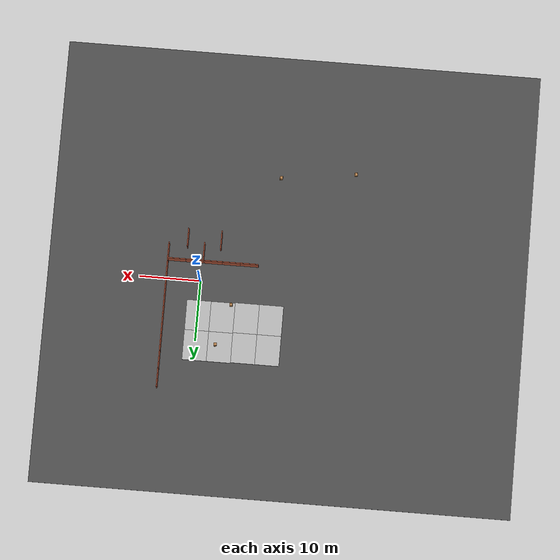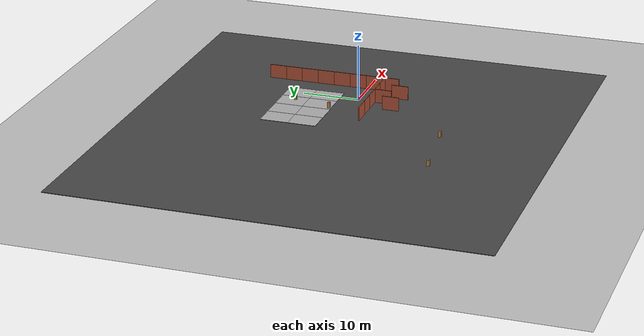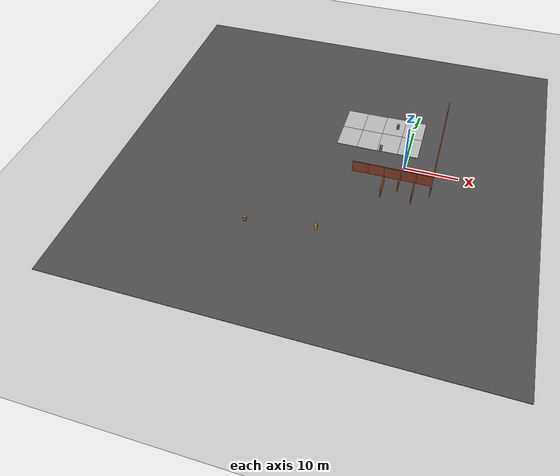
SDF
<sdf version="1.6">
 <world name="default">
  <scene>
   <sky><clouds><speed>5</speed></clouds></sky>
   <ambient>0.4 0.4 0.4 1</ambient>
   <background>0.7 0.7 0.7 1</background>
   <shadows>1</shadows>
  </scene>
  <light name="sun" type="directional">
   <pose>0 0 10 0 -0 0</pose>
   <diffuse>0.8 0.8 0.8 1</diffuse>
   <specular>0.2 0.2 0.2 1</specular>
   <attenuation>
    <range>1000</range>
    <constant>0.9</constant>
    <linear>0.01</linear>
    <quadratic>0.001</quadratic>
   </attenuation>
   <direction>-0.5 0.1 -0.9</direction>
  </light>
  <model name="ground_plane">
   <static>1</static>
   <link name="link">
    <collision name="collision">
     <geometry><plane><normal>0 0 1</normal><size>100 100</size></plane></geometry>
     <surface><friction><ode><mu>100</mu><mu2>50</mu2></ode></friction></surface>
    </collision>
    <visual name="visual">
     <cast_shadows>0</cast_shadows>
     <geometry><plane><normal>0 0 1</normal><size>100 100</size></plane></geometry>
     <material>
      <script><uri>file://media/materials/scripts/gazebo.material</uri><name>Gazebo/Grey</name></script>
     </material>
    </visual>
   </link>
  </model>
  <gravity>0 0 -9.8</gravity>
  <magnetic_field>6e-06 2.3e-05 -4.2e-05</magnetic_field>
  <atmosphere type="adiabatic"/>
  <physics name="default_physics" default="0" type="ode">
   <max_step_size>0.01</max_step_size>
   <real_time_factor>1</real_time_factor>
   <real_time_update_rate>100</real_time_update_rate>
  </physics>
  <scene><ambient>0.4 0.4 0.4 1</ambient><background>0.7 0.7 0.7 1</background><shadows>1</shadows></scene>
  <spherical_coordinates>
   <surface_model>EARTH_WGS84</surface_model>
   <latitude_deg>0</latitude_deg>
   <longitude_deg>0</longitude_deg>
   <elevation>0</elevation>
   <heading_deg>0</heading_deg>
  </spherical_coordinates>
  <model name="wall_brick_3m">
   <pose>2.53536 -6.79833 0 0 -0 1.57</pose>
   <link name="Wall_2">
    <collision name="Wall_2_Collision">
     <geometry><box><size>3 0.15 2.5</size></box></geometry>
     <pose>0 0 1.25 0 -0 0</pose>
    </collision>
    <visual name="Wall_2_Visual">
     <pose>0 0 1.25 0 -0 0</pose>
     <geometry><box><size>3 0.15 2.5</size></box></geometry>
     <material>
      <script><uri>file://media/materials/scripts/gazebo.material</uri><name>Gazebo/Bricks</name></script>
      <ambient>1 1 1 1</ambient>
     </material>
     <meta><layer>0</layer></meta>
    </visual>
   </link>
   <static>1</static>
  </model>
  <model name="wall_brick_3m_clone">
   <pose>-0.265232 -4.62667 0 0 -0 1.57</pose>
   <link name="Wall_2">
    <collision name="Wall_2_Collision">
     <geometry><box><size>3 0.15 2.5</size></box></geometry>
     <pose>0 0 1.25 0 -0 0</pose>
    </collision>
    <visual name="Wall_2_Visual">
     <pose>0 0 1.25 0 -0 0</pose>
     <geometry><box><size>3 0.15 2.5</size></box></geometry>
     <material>
      <script><uri>file://media/materials/scripts/gazebo.material</uri><name>Gazebo/Bricks</name></script>
      <ambient>1 1 1 1</ambient>
     </material>
     <meta><layer>0</layer></meta>
    </visual>
   </link>
   <static>1</static>
  </model>
  <model name="wall_brick_3m_clone_clone">
   <pose>-2.96784 -6.78032 0 0 -0 1.57</pose>
   <link name="Wall_2">
    <collision name="Wall_2_Collision">
     <geometry><box><size>3 0.15 2.5</size></box></geometry>
     <pose>0 0 1.25 0 -0 0</pose>
    </collision>
    <visual name="Wall_2_Visual">
     <pose>0 0 1.25 0 -0 0</pose>
     <geometry><box><size>3 0.15 2.5</size></box></geometry>
     <material>
      <script><uri>file://media/materials/scripts/gazebo.material</uri><name>Gazebo/Bricks</name></script>
      <ambient>1 1 1 1</ambient>
     </material>
     <meta><layer>0</layer></meta>
    </visual>
   </link>
   <static>1</static>
  </model>
  <model name="wall_brick_3m_clone_0">
   <pose>5.57817 -4.2114 0 0 -0 1.57</pose>
   <link name="Wall_2">
    <collision name="Wall_2_Collision">
     <geometry><box><size>3 0.15 2.5</size></box></geometry>
     <pose>0 0 1.25 0 -0 0</pose>
    </collision>
    <visual name="Wall_2_Visual">
     <pose>0 0 1.25 0 -0 0</pose>
     <geometry><box><size>3 0.15 2.5</size></box></geometry>
     <material>
      <script><uri>file://media/materials/scripts/gazebo.material</uri><name>Gazebo/Bricks</name></script>
      <ambient>1 1 1 1</ambient>
     </material>
     <meta><layer>0</layer></meta>
    </visual>
   </link>
   <static>1</static>
  </model>
  <model name="wall_brick_3m_clone_1">
   <pose>4.12513 -3.1 0 0 -0 0</pose>
   <link name="Wall_2">
    <collision name="Wall_2_Collision">
     <geometry><box><size>3 0.15 2.5</size></box></geometry>
     <pose>0 0 1.25 0 -0 0</pose>
    </collision>
    <visual name="Wall_2_Visual">
     <pose>0 0 1.25 0 -0 0</pose>
     <geometry><box><size>3 0.15 2.5</size></box></geometry>
     <material>
      <script><uri>file://media/materials/scripts/gazebo.material</uri><name>Gazebo/Bricks</name></script>
      <ambient>1 1 1 1</ambient>
     </material>
     <meta><layer>0</layer></meta>
    </visual>
   </link>
   <static>1</static>
  </model>
  <model name="wall_brick_3m_clone_1_clone">
   <pose>1.12513 -3.1 0 0 -0 0</pose>
   <link name="Wall_2">
    <collision name="Wall_2_Collision">
     <geometry><box><size>3 0.15 2.5</size></box></geometry>
     <pose>0 0 1.25 0 -0 0</pose>
    </collision>
    <visual name="Wall_2_Visual">
     <pose>0 0 1.25 0 -0 0</pose>
     <geometry><box><size>3 0.15 2.5</size></box></geometry>
     <material>
      <script><uri>file://media/materials/scripts/gazebo.material</uri><name>Gazebo/Bricks</name></script>
      <ambient>1 1 1 1</ambient>
     </material>
     <meta><layer>0</layer></meta>
    </visual>
   </link>
   <static>1</static>
  </model>
  <model name="wall_brick_3m_clone_1_clone_0">
   <pose>-1.87487 -3.1 0 0 -0 0</pose>
   <link name="Wall_2">
    <collision name="Wall_2_Collision">
     <geometry><box><size>3 0.15 2.5</size></box></geometry>
     <pose>0 0 1.25 0 -0 0</pose>
    </collision>
    <visual name="Wall_2_Visual">
     <pose>0 0 1.25 0 -0 0</pose>
     <geometry><box><size>3 0.15 2.5</size></box></geometry>
     <material>
      <script><uri>file://media/materials/scripts/gazebo.material</uri><name>Gazebo/Bricks</name></script>
      <ambient>1 1 1 1</ambient>
     </material>
     <meta><layer>0</layer></meta>
    </visual>
   </link>
   <static>1</static>
  </model>
  <model name="wall_brick_3m_clone_1_clone_1">
   <pose>-4.87487 -3.1 0 0 -0 0</pose>
   <link name="Wall_2">
    <collision name="Wall_2_Collision">
     <geometry><box><size>3 0.15 2.5</size></box></geometry>
     <pose>0 0 1.25 0 -0 0</pose>
    </collision>
    <visual name="Wall_2_Visual">
     <pose>0 0 1.25 0 -0 0</pose>
     <geometry><box><size>3 0.15 2.5</size></box></geometry>
     <material>
      <script><uri>file://media/materials/scripts/gazebo.material</uri><name>Gazebo/Bricks</name></script>
      <ambient>1 1 1 1</ambient>
     </material>
     <meta><layer>0</layer></meta>
    </visual>
   </link>
   <static>1</static>
  </model>
  <model name="wall_brick_3m_clone_1_clone_1_clone">
   <pose>-7.87487 -3.11682 0 0 -0 0</pose>
   <link name="Wall_2">
    <collision name="Wall_2_Collision">
     <geometry><box><size>3 0.15 2.5</size></box></geometry>
     <pose>0 0 1.25 0 -0 0</pose>
    </collision>
    <visual name="Wall_2_Visual">
     <pose>0 0 1.25 0 -0 0</pose>
     <geometry><box><size>3 0.15 2.5</size></box></geometry>
     <material>
      <script><uri>file://media/materials/scripts/gazebo.material</uri><name>Gazebo/Bricks</name></script>
      <ambient>1 1 1 1</ambient>
     </material>
     <meta><layer>0</layer></meta>
    </visual>
   </link>
   <static>1</static>
  </model>
  <model name="wall_brick_3m_clone_0_clone">
   <pose>5.57817 -1.21128 0 0 -0 1.57</pose>
   <link name="Wall_2">
    <collision name="Wall_2_Collision">
     <geometry><box><size>3 0.15 2.5</size></box></geometry>
     <pose>0 0 1.25 0 -0 0</pose>
    </collision>
    <visual name="Wall_2_Visual">
     <pose>0 0 1.25 0 -0 0</pose>
     <geometry><box><size>3 0.15 2.5</size></box></geometry>
     <material>
      <script><uri>file://media/materials/scripts/gazebo.material</uri><name>Gazebo/Bricks</name></script>
      <ambient>1 1 1 1</ambient>
     </material>
     <meta><layer>0</layer></meta>
    </visual>
   </link>
   <static>1</static>
  </model>
  <model name="wall_brick_3m_clone_0_clone_clone">
   <pose>5.57817 1.78884 0 0 -0 1.57</pose>
   <link name="Wall_2">
    <collision name="Wall_2_Collision">
     <geometry><box><size>3 0.15 2.5</size></box></geometry>
     <pose>0 0 1.25 0 -0 0</pose>
    </collision>
    <visual name="Wall_2_Visual">
     <pose>0 0 1.25 0 -0 0</pose>
     <geometry><box><size>3 0.15 2.5</size></box></geometry>
     <material>
      <script><uri>file://media/materials/scripts/gazebo.material</uri><name>Gazebo/Bricks</name></script>
      <ambient>1 1 1 1</ambient>
     </material>
     <meta><layer>0</layer></meta>
    </visual>
   </link>
   <static>1</static>
  </model>
  <model name="wall_brick_3m_clone_0_clone_clone_0">
   <pose>5.57817 4.78896 0 0 -0 1.57</pose>
   <link name="Wall_2">
    <collision name="Wall_2_Collision">
     <geometry><box><size>3 0.15 2.5</size></box></geometry>
     <pose>0 0 1.25 0 -0 0</pose>
    </collision>
    <visual name="Wall_2_Visual">
     <pose>0 0 1.25 0 -0 0</pose>
     <geometry><box><size>3 0.15 2.5</size></box></geometry>
     <material>
      <script><uri>file://media/materials/scripts/gazebo.material</uri><name>Gazebo/Bricks</name></script>
      <ambient>1 1 1 1</ambient>
     </material>
     <meta><layer>0</layer></meta>
    </visual>
   </link>
   <static>1</static>
  </model>
  <model name="wall_brick_3m_clone_0_clone_clone_0_clone">
   <pose>5.57817 7.78908 0 0 -0 1.57</pose>
   <link name="Wall_2">
    <collision name="Wall_2_Collision">
     <geometry><box><size>3 0.15 2.5</size></box></geometry>
     <pose>0 0 1.25 0 -0 0</pose>
    </collision>
    <visual name="Wall_2_Visual">
     <pose>0 0 1.25 0 -0 0</pose>
     <geometry><box><size>3 0.15 2.5</size></box></geometry>
     <material>
      <script><uri>file://media/materials/scripts/gazebo.material</uri><name>Gazebo/Bricks</name></script>
      <ambient>1 1 1 1</ambient>
     </material>
     <meta><layer>0</layer></meta>
    </visual>
   </link>
   <static>1</static>
  </model>
  <model name="wall_brick_3m_clone_0_clone_clone_0_clone_clone">
   <pose>5.57817 10.7892 0 0 -0 1.57</pose>
   <link name="Wall_2">
    <collision name="Wall_2_Collision">
     <geometry><box><size>3 0.15 2.5</size></box></geometry>
     <pose>0 0 1.25 0 -0 0</pose>
    </collision>
    <visual name="Wall_2_Visual">
     <pose>0 0 1.25 0 -0 0</pose>
     <geometry><box><size>3 0.15 2.5</size></box></geometry>
     <material>
      <script><uri>file://media/materials/scripts/gazebo.material</uri><name>Gazebo/Bricks</name></script>
      <ambient>1 1 1 1</ambient>
     </material>
     <meta><layer>0</layer></meta>
    </visual>
   </link>
   <static>1</static>
  </model>
  <model name="wall_brick_3m_clone_0_clone_clone_0_clone_clone_0">
   <pose>5.57817 13.7893 0 0 -0 1.57</pose>
   <link name="Wall_2">
    <collision name="Wall_2_Collision">
     <geometry><box><size>3 0.15 2.5</size></box></geometry>
     <pose>0 0 1.25 0 -0 0</pose>
    </collision>
    <visual name="Wall_2_Visual">
     <pose>0 0 1.25 0 -0 0</pose>
     <geometry><box><size>3 0.15 2.5</size></box></geometry>
     <material>
      <script><uri>file://media/materials/scripts/gazebo.material</uri><name>Gazebo/Bricks</name></script>
      <ambient>1 1 1 1</ambient>
     </material>
     <meta><layer>0</layer></meta>
    </visual>
   </link>
   <static>1</static>
  </model>
  <model name="wall_brick_3m_clone_0_clone_clone_0_clone_clone_0_clone">
   <pose>5.57817 16.7894 0 0 -0 1.57</pose>
   <link name="Wall_2">
    <collision name="Wall_2_Collision">
     <geometry><box><size>3 0.15 2.5</size></box></geometry>
     <pose>0 0 1.25 0 -0 0</pose>
    </collision>
    <visual name="Wall_2_Visual">
     <pose>0 0 1.25 0 -0 0</pose>
     <geometry><box><size>3 0.15 2.5</size></box></geometry>
     <material>
      <script><uri>file://media/materials/scripts/gazebo.material</uri><name>Gazebo/Bricks</name></script>
      <ambient>1 1 1 1</ambient>
     </material>
     <meta><layer>0</layer></meta>
    </visual>
   </link>
   <static>1</static>
  </model>
  <model name="mud_box">
   <static>1</static>
   <link name="link">
    <collision name="collision"><geometry><box><size>8 10 0.2</size></box></geometry></collision>
    <visual name="visual_1">
     <pose>-2 2.5 0 0 -0 0</pose>
     <cast_shadows>0</cast_shadows>
     <geometry><box><size>4 5 0.2</size></box></geometry>
     <material>
      <script>
       <uri>model://mud_box/materials/scripts</uri>
       <uri>model://mud_box/materials/textures</uri>
       <name>vrc/mud</name>
      </script>
     </material>
    </visual>
    <visual name="visual_2">
     <pose>2 2.5 0 0 -0 0</pose>
     <cast_shadows>0</cast_shadows>
     <geometry><box><size>4 5 0.2</size></box></geometry>
     <material>
      <script>
       <uri>model://mud_box/materials/scripts</uri>
       <uri>model://mud_box/materials/textures</uri>
       <name>vrc/mud</name>
      </script>
     </material>
    </visual>
    <visual name="visual_3">
     <pose>2 -2.5 0 0 -0 0</pose>
     <cast_shadows>0</cast_shadows>
     <geometry><box><size>4 5 0.2</size></box></geometry>
     <material>
      <script>
       <uri>model://mud_box/materials/scripts</uri>
       <uri>model://mud_box/materials/textures</uri>
       <name>vrc/mud</name>
      </script>
     </material>
    </visual>
    <visual name="visual_4">
     <pose>-2 -2.5 0 0 -0 0</pose>
     <cast_shadows>0</cast_shadows>
     <geometry><box><size>4 5 0.2</size></box></geometry>
     <material>
      <script>
       <uri>model://mud_box/materials/scripts</uri>
       <uri>model://mud_box/materials/textures</uri>
       <name>vrc/mud</name>
      </script>
     </material>
    </visual>
   </link>
   <pose>-2.08423 8.22908 0 0 -0 0</pose>
  </model>
  <model name="mud_box_clone">
   <static>1</static>
   <link name="link">
    <collision name="collision"><geometry><box><size>8 10 0.2</size></box></geometry></collision>
    <visual name="visual_1">
     <pose>-2 2.5 0 0 -0 0</pose>
     <cast_shadows>0</cast_shadows>
     <geometry><box><size>4 5 0.2</size></box></geometry>
     <material>
      <script>
       <uri>model://mud_box/materials/scripts</uri>
       <uri>model://mud_box/materials/textures</uri>
       <name>vrc/mud</name>
      </script>
     </material>
    </visual>
    <visual name="visual_2">
     <pose>2 2.5 0 0 -0 0</pose>
     <cast_shadows>0</cast_shadows>
     <geometry><box><size>4 5 0.2</size></box></geometry>
     <material>
      <script>
       <uri>model://mud_box/materials/scripts</uri>
       <uri>model://mud_box/materials/textures</uri>
       <name>vrc/mud</name>
      </script>
     </material>
    </visual>
    <visual name="visual_3">
     <pose>2 -2.5 0 0 -0 0</pose>
     <cast_shadows>0</cast_shadows>
     <geometry><box><size>4 5 0.2</size></box></geometry>
     <material>
      <script>
       <uri>model://mud_box/materials/scripts</uri>
       <uri>model://mud_box/materials/textures</uri>
       <name>vrc/mud</name>
      </script>
     </material>
    </visual>
    <visual name="visual_4">
     <pose>-2 -2.5 0 0 -0 0</pose>
     <cast_shadows>0</cast_shadows>
     <geometry><box><size>4 5 0.2</size></box></geometry>
     <material>
      <script>
       <uri>model://mud_box/materials/scripts</uri>
       <uri>model://mud_box/materials/textures</uri>
       <name>vrc/mud</name>
      </script>
     </material>
    </visual>
   </link>
   <pose>-10.0537 8.12309 0 0 -0 0</pose>
  </model>
  <model name="marble_1_5cm">
   <link name="link">
    <pose>0 0 0.0075 0 -0 0</pose>
    <inertial>
     <mass>0.0062</mass>
     <inertia>
      <ixx>1.395e-07</ixx>
      <ixy>0</ixy>
      <ixz>0</ixz>
      <iyy>1.395e-07</iyy>
      <iyz>0</iyz>
      <izz>1.395e-07</izz>
     </inertia>
    </inertial>
    <collision name="collision">
     <geometry><sphere><radius>0.0075</radius></sphere></geometry>
     <surface>
      <contact>
       <poissons_ratio>0.22</poissons_ratio>
       <elastic_modulus>5.1e+10</elastic_modulus>
       <ode><kp>100000</kp><kd>100</kd><max_vel>100</max_vel><min_depth>0.001</min_depth></ode>
      </contact>
      <friction>
       <torsional>
        <coefficient>1</coefficient>
        <use_patch_radius>0</use_patch_radius>
        <surface_radius>0.01</surface_radius>
       </torsional>
      </friction>
     </surface>
    </collision>
    <visual name="visual">
     <geometry><sphere><radius>0.0075</radius></sphere></geometry>
     <material>
      <script><uri>file://media/materials/scripts/gazebo.material</uri><name>Gazebo/Blue</name></script>
     </material>
    </visual>
    <velocity_decay><linear>0</linear><angular>0.005</angular></velocity_decay>
   </link>
   <pose>5.91825 10.5896 0.048999 0 -0 0</pose>
  </model>
  <model name="cabinet">
   <static>1</static>
   <link name="cabinet_bottom_plate">
    <inertial>
     <pose>0 0 -1 0 -0 0</pose>
     <inertia><ixx>2.05</ixx><ixy>0</ixy><ixz>0</ixz><iyy>2.05</iyy><iyz>0</iyz><izz>2.05</izz></inertia>
     <mass>25</mass>
    </inertial>
    <collision name="cabinet_bottom_plate_geom">
     <pose>0 0 0.01 0 -0 0</pose>
     <geometry><box><size>0.45 0.45 0.02</size></box></geometry>
    </collision>
    <visual name="cabinet_bottom_plate_geom_visual">
     <pose>0 0 0.01 0 -0 0</pose>
     <geometry><box><size>0.45 0.45 0.02</size></box></geometry>
     <material>
      <script><uri>file://media/materials/scripts/gazebo.material</uri><name>Gazebo/Wood</name></script>
     </material>
    </visual>
    <collision name="cabinet_bottom_plate_geom_cabinet_back_plate">
     <pose>0.235 0 0.51 0 -0 0</pose>
     <geometry><box><size>0.02 0.45 1.02</size></box></geometry>
    </collision>
    <visual name="cabinet_bottom_plate_geom_cabinet_back_plate_visual">
     <pose>0.235 0 0.51 0 -0 0</pose>
     <geometry><box><size>0.02 0.45 1.02</size></box></geometry>
     <material>
      <script><uri>file://media/materials/scripts/gazebo.material</uri><name>Gazebo/Wood</name></script>
     </material>
    </visual>
    <collision name="cabinet_bottom_plate_geom_cabinet_left_plate">
     <pose>0 0.235 0.51 0 -0 0</pose>
     <geometry><box><size>0.45 0.02 1.02</size></box></geometry>
    </collision>
    <visual name="cabinet_bottom_plate_geom_cabinet_left_plate_visual">
     <pose>0 0.235 0.51 0 -0 0</pose>
     <geometry><box><size>0.45 0.02 1.02</size></box></geometry>
     <material>
      <script><uri>file://media/materials/scripts/gazebo.material</uri><name>Gazebo/Wood</name></script>
     </material>
    </visual>
    <collision name="cabinet_bottom_plate_geom_cabinet_middle_plate">
     <pose>0 0 0.51 0 -0 0</pose>
     <geometry><box><size>0.45 0.45 0.02</size></box></geometry>
    </collision>
    <visual name="cabinet_bottom_plate_geom_cabinet_middle_plate_visual">
     <pose>0 0 0.51 0 -0 0</pose>
     <geometry><box><size>0.45 0.45 0.02</size></box></geometry>
     <material>
      <script><uri>file://media/materials/scripts/gazebo.material</uri><name>Gazebo/Wood</name></script>
     </material>
    </visual>
    <collision name="cabinet_bottom_plate_geom_cabinet_right_plate">
     <pose>0 -0.235 0.51 0 -0 0</pose>
     <geometry><box><size>0.45 0.02 1.02</size></box></geometry>
    </collision>
    <visual name="cabinet_bottom_plate_geom_cabinet_right_plate_visual">
     <pose>0 -0.235 0.51 0 -0 0</pose>
     <geometry><box><size>0.45 0.02 1.02</size></box></geometry>
     <material>
      <script><uri>file://media/materials/scripts/gazebo.material</uri><name>Gazebo/Wood</name></script>
     </material>
    </visual>
    <collision name="cabinet_bottom_plate_geom_cabinet_top_plate">
     <pose>0 0 1.01 0 -0 0</pose>
     <geometry><box><size>0.45 0.45 0.02</size></box></geometry>
    </collision>
    <visual name="cabinet_bottom_plate_geom_cabinet_top_plate_visual">
     <pose>0 0 1.01 0 -0 0</pose>
     <geometry><box><size>0.45 0.45 0.02</size></box></geometry>
     <material>
      <script><uri>file://media/materials/scripts/gazebo.material</uri><name>Gazebo/Wood</name></script>
     </material>
    </visual>
   </link>
   <pose>-5.4039 3.61914 0.109518 0 -0 3.13851</pose>
  </model>
  <model name="cabinet_clone">
   <static>1</static>
   <link name="cabinet_bottom_plate">
    <inertial>
     <pose>0 0 -1 0 -0 0</pose>
     <inertia><ixx>2.05</ixx><ixy>0</ixy><ixz>0</ixz><iyy>2.05</iyy><iyz>0</iyz><izz>2.05</izz></inertia>
     <mass>25</mass>
    </inertial>
    <collision name="cabinet_bottom_plate_geom">
     <pose>0 0 0.01 0 -0 0</pose>
     <geometry><box><size>0.45 0.45 0.02</size></box></geometry>
    </collision>
    <visual name="cabinet_bottom_plate_geom_visual">
     <pose>0 0 0.01 0 -0 0</pose>
     <geometry><box><size>0.45 0.45 0.02</size></box></geometry>
     <material>
      <script><uri>file://media/materials/scripts/gazebo.material</uri><name>Gazebo/Wood</name></script>
     </material>
    </visual>
    <collision name="cabinet_bottom_plate_geom_cabinet_back_plate">
     <pose>0.235 0 0.51 0 -0 0</pose>
     <geometry><box><size>0.02 0.45 1.02</size></box></geometry>
    </collision>
    <visual name="cabinet_bottom_plate_geom_cabinet_back_plate_visual">
     <pose>0.235 0 0.51 0 -0 0</pose>
     <geometry><box><size>0.02 0.45 1.02</size></box></geometry>
     <material>
      <script><uri>file://media/materials/scripts/gazebo.material</uri><name>Gazebo/Wood</name></script>
     </material>
    </visual>
    <collision name="cabinet_bottom_plate_geom_cabinet_left_plate">
     <pose>0 0.235 0.51 0 -0 0</pose>
     <geometry><box><size>0.45 0.02 1.02</size></box></geometry>
    </collision>
    <visual name="cabinet_bottom_plate_geom_cabinet_left_plate_visual">
     <pose>0 0.235 0.51 0 -0 0</pose>
     <geometry><box><size>0.45 0.02 1.02</size></box></geometry>
     <material>
      <script><uri>file://media/materials/scripts/gazebo.material</uri><name>Gazebo/Wood</name></script>
     </material>
    </visual>
    <collision name="cabinet_bottom_plate_geom_cabinet_middle_plate">
     <pose>0 0 0.51 0 -0 0</pose>
     <geometry><box><size>0.45 0.45 0.02</size></box></geometry>
    </collision>
    <visual name="cabinet_bottom_plate_geom_cabinet_middle_plate_visual">
     <pose>0 0 0.51 0 -0 0</pose>
     <geometry><box><size>0.45 0.45 0.02</size></box></geometry>
     <material>
      <script><uri>file://media/materials/scripts/gazebo.material</uri><name>Gazebo/Wood</name></script>
     </material>
    </visual>
    <collision name="cabinet_bottom_plate_geom_cabinet_right_plate">
     <pose>0 -0.235 0.51 0 -0 0</pose>
     <geometry><box><size>0.45 0.02 1.02</size></box></geometry>
    </collision>
    <visual name="cabinet_bottom_plate_geom_cabinet_right_plate_visual">
     <pose>0 -0.235 0.51 0 -0 0</pose>
     <geometry><box><size>0.45 0.02 1.02</size></box></geometry>
     <material>
      <script><uri>file://media/materials/scripts/gazebo.material</uri><name>Gazebo/Wood</name></script>
     </material>
    </visual>
    <collision name="cabinet_bottom_plate_geom_cabinet_top_plate">
     <pose>0 0 1.01 0 -0 0</pose>
     <geometry><box><size>0.45 0.45 0.02</size></box></geometry>
    </collision>
    <visual name="cabinet_bottom_plate_geom_cabinet_top_plate_visual">
     <pose>0 0 1.01 0 -0 0</pose>
     <geometry><box><size>0.45 0.45 0.02</size></box></geometry>
     <material>
      <script><uri>file://media/materials/scripts/gazebo.material</uri><name>Gazebo/Wood</name></script>
     </material>
    </visual>
   </link>
   <pose>-3.37993 10.4047 0.109518 0 -0 0.166688</pose>
  </model>
  <model name="cabinet_0">
   <static>1</static>
   <link name="cabinet_bottom_plate">
    <inertial>
     <pose>0 0 -1 0 -0 0</pose>
     <inertia><ixx>2.05</ixx><ixy>0</ixy><ixz>0</ixz><iyy>2.05</iyy><iyz>0</iyz><izz>2.05</izz></inertia>
     <mass>25</mass>
    </inertial>
    <collision name="cabinet_bottom_plate_geom">
     <pose>0 0 0.01 0 -0 0</pose>
     <geometry><box><size>0.45 0.45 0.02</size></box></geometry>
    </collision>
    <visual name="cabinet_bottom_plate_geom_visual">
     <pose>0 0 0.01 0 -0 0</pose>
     <geometry><box><size>0.45 0.45 0.02</size></box></geometry>
     <material>
      <script><uri>file://media/materials/scripts/gazebo.material</uri><name>Gazebo/Wood</name></script>
     </material>
    </visual>
    <collision name="cabinet_bottom_plate_geom_cabinet_back_plate">
     <pose>0.235 0 0.51 0 -0 0</pose>
     <geometry><box><size>0.02 0.45 1.02</size></box></geometry>
    </collision>
    <visual name="cabinet_bottom_plate_geom_cabinet_back_plate_visual">
     <pose>0.235 0 0.51 0 -0 0</pose>
     <geometry><box><size>0.02 0.45 1.02</size></box></geometry>
     <material>
      <script><uri>file://media/materials/scripts/gazebo.material</uri><name>Gazebo/Wood</name></script>
     </material>
    </visual>
    <collision name="cabinet_bottom_plate_geom_cabinet_left_plate">
     <pose>0 0.235 0.51 0 -0 0</pose>
     <geometry><box><size>0.45 0.02 1.02</size></box></geometry>
    </collision>
    <visual name="cabinet_bottom_plate_geom_cabinet_left_plate_visual">
     <pose>0 0.235 0.51 0 -0 0</pose>
     <geometry><box><size>0.45 0.02 1.02</size></box></geometry>
     <material>
      <script><uri>file://media/materials/scripts/gazebo.material</uri><name>Gazebo/Wood</name></script>
     </material>
    </visual>
    <collision name="cabinet_bottom_plate_geom_cabinet_middle_plate">
     <pose>0 0 0.51 0 -0 0</pose>
     <geometry><box><size>0.45 0.45 0.02</size></box></geometry>
    </collision>
    <visual name="cabinet_bottom_plate_geom_cabinet_middle_plate_visual">
     <pose>0 0 0.51 0 -0 0</pose>
     <geometry><box><size>0.45 0.45 0.02</size></box></geometry>
     <material>
      <script><uri>file://media/materials/scripts/gazebo.material</uri><name>Gazebo/Wood</name></script>
     </material>
    </visual>
    <collision name="cabinet_bottom_plate_geom_cabinet_right_plate">
     <pose>0 -0.235 0.51 0 -0 0</pose>
     <geometry><box><size>0.45 0.02 1.02</size></box></geometry>
    </collision>
    <visual name="cabinet_bottom_plate_geom_cabinet_right_plate_visual">
     <pose>0 -0.235 0.51 0 -0 0</pose>
     <geometry><box><size>0.45 0.02 1.02</size></box></geometry>
     <material>
      <script><uri>file://media/materials/scripts/gazebo.material</uri><name>Gazebo/Wood</name></script>
     </material>
    </visual>
    <collision name="cabinet_bottom_plate_geom_cabinet_top_plate">
     <pose>0 0 1.01 0 -0 0</pose>
     <geometry><box><size>0.45 0.45 0.02</size></box></geometry>
    </collision>
    <visual name="cabinet_bottom_plate_geom_cabinet_top_plate_visual">
     <pose>0 0 1.01 0 -0 0</pose>
     <geometry><box><size>0.45 0.45 0.02</size></box></geometry>
     <material>
      <script><uri>file://media/materials/scripts/gazebo.material</uri><name>Gazebo/Wood</name></script>
     </material>
    </visual>
   </link>
   <pose>-11.9473 -18.2354 0.067976 0 -0 1.57197</pose>
  </model>
  <model name="cabinet_0_clone">
   <static>1</static>
   <link name="cabinet_bottom_plate">
    <inertial>
     <pose>0 0 -1 0 -0 0</pose>
     <inertia><ixx>2.05</ixx><ixy>0</ixy><ixz>0</ixz><iyy>2.05</iyy><iyz>0</iyz><izz>2.05</izz></inertia>
     <mass>25</mass>
    </inertial>
    <collision name="cabinet_bottom_plate_geom">
     <pose>0 0 0.01 0 -0 0</pose>
     <geometry><box><size>0.45 0.45 0.02</size></box></geometry>
    </collision>
    <visual name="cabinet_bottom_plate_geom_visual">
     <pose>0 0 0.01 0 -0 0</pose>
     <geometry><box><size>0.45 0.45 0.02</size></box></geometry>
     <material>
      <script><uri>file://media/materials/scripts/gazebo.material</uri><name>Gazebo/Wood</name></script>
     </material>
    </visual>
    <collision name="cabinet_bottom_plate_geom_cabinet_back_plate">
     <pose>0.235 0 0.51 0 -0 0</pose>
     <geometry><box><size>0.02 0.45 1.02</size></box></geometry>
    </collision>
    <visual name="cabinet_bottom_plate_geom_cabinet_back_plate_visual">
     <pose>0.235 0 0.51 0 -0 0</pose>
     <geometry><box><size>0.02 0.45 1.02</size></box></geometry>
     <material>
      <script><uri>file://media/materials/scripts/gazebo.material</uri><name>Gazebo/Wood</name></script>
     </material>
    </visual>
    <collision name="cabinet_bottom_plate_geom_cabinet_left_plate">
     <pose>0 0.235 0.51 0 -0 0</pose>
     <geometry><box><size>0.45 0.02 1.02</size></box></geometry>
    </collision>
    <visual name="cabinet_bottom_plate_geom_cabinet_left_plate_visual">
     <pose>0 0.235 0.51 0 -0 0</pose>
     <geometry><box><size>0.45 0.02 1.02</size></box></geometry>
     <material>
      <script><uri>file://media/materials/scripts/gazebo.material</uri><name>Gazebo/Wood</name></script>
     </material>
    </visual>
    <collision name="cabinet_bottom_plate_geom_cabinet_middle_plate">
     <pose>0 0 0.51 0 -0 0</pose>
     <geometry><box><size>0.45 0.45 0.02</size></box></geometry>
    </collision>
    <visual name="cabinet_bottom_plate_geom_cabinet_middle_plate_visual">
     <pose>0 0 0.51 0 -0 0</pose>
     <geometry><box><size>0.45 0.45 0.02</size></box></geometry>
     <material>
      <script><uri>file://media/materials/scripts/gazebo.material</uri><name>Gazebo/Wood</name></script>
     </material>
    </visual>
    <collision name="cabinet_bottom_plate_geom_cabinet_right_plate">
     <pose>0 -0.235 0.51 0 -0 0</pose>
     <geometry><box><size>0.45 0.02 1.02</size></box></geometry>
    </collision>
    <visual name="cabinet_bottom_plate_geom_cabinet_right_plate_visual">
     <pose>0 -0.235 0.51 0 -0 0</pose>
     <geometry><box><size>0.45 0.02 1.02</size></box></geometry>
     <material>
      <script><uri>file://media/materials/scripts/gazebo.material</uri><name>Gazebo/Wood</name></script>
     </material>
    </visual>
    <collision name="cabinet_bottom_plate_geom_cabinet_top_plate">
     <pose>0 0 1.01 0 -0 0</pose>
     <geometry><box><size>0.45 0.45 0.02</size></box></geometry>
    </collision>
    <visual name="cabinet_bottom_plate_geom_cabinet_top_plate_visual">
     <pose>0 0 1.01 0 -0 0</pose>
     <geometry><box><size>0.45 0.45 0.02</size></box></geometry>
     <material>
      <script><uri>file://media/materials/scripts/gazebo.material</uri><name>Gazebo/Wood</name></script>
     </material>
    </visual>
   </link>
   <pose>-24.2691 -19.8095 0.067976 0 0 -1.56486</pose>
  </model>
  <model name="asphalt_plane">
   <static>1</static>
   <link name="link">
    <collision name="collision"><geometry><box><size>78.871 74.023 0.1</size></box></geometry></collision>
    <visual name="visual">
     <cast_shadows>0</cast_shadows>
     <geometry><box><size>78.871 74.023 0.1</size></box></geometry>
     <material>
      <script>
       <uri>model://asphalt_plane/materials/scripts</uri>
       <uri>model://asphalt_plane/materials/textures</uri>
       <name>vrc/asphalt</name>
      </script>
     </material>
    </visual>
   </link>
   <pose>-14.2216 -1.6968 0 0 -0 0</pose>
  </model>
 </world>
</sdf>
